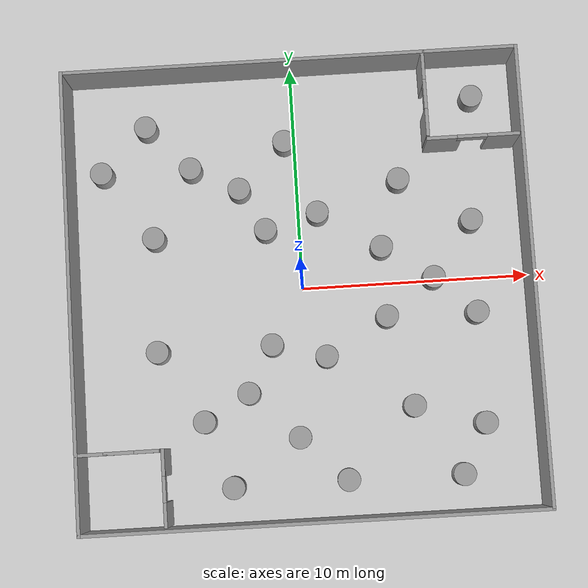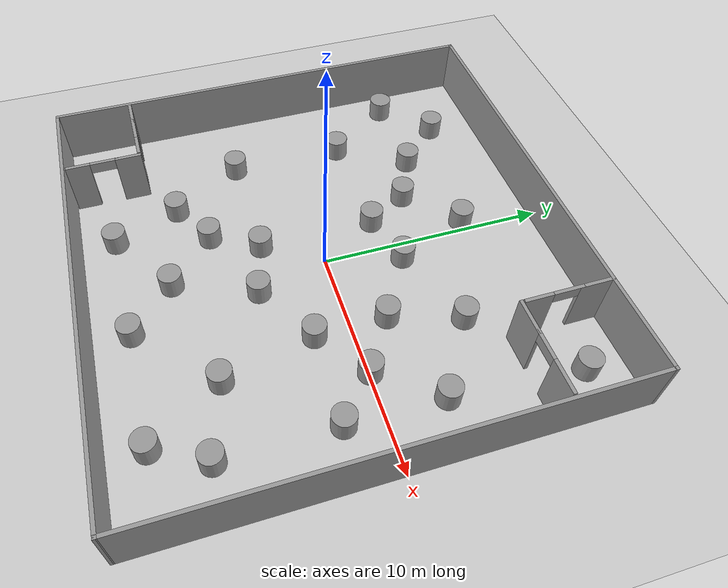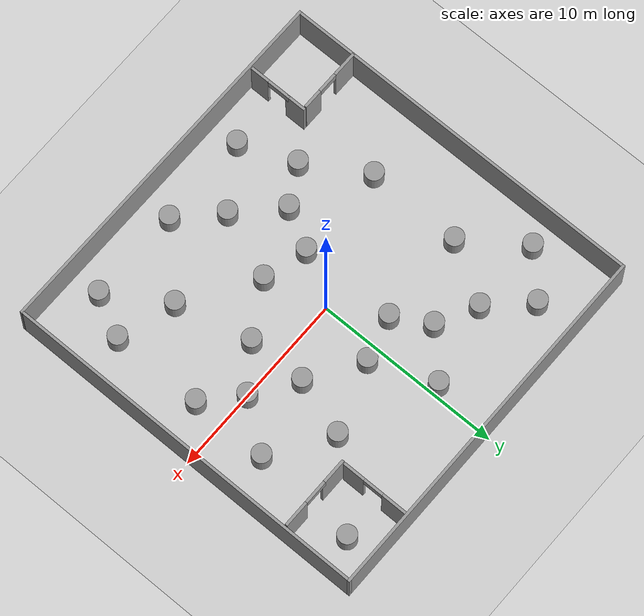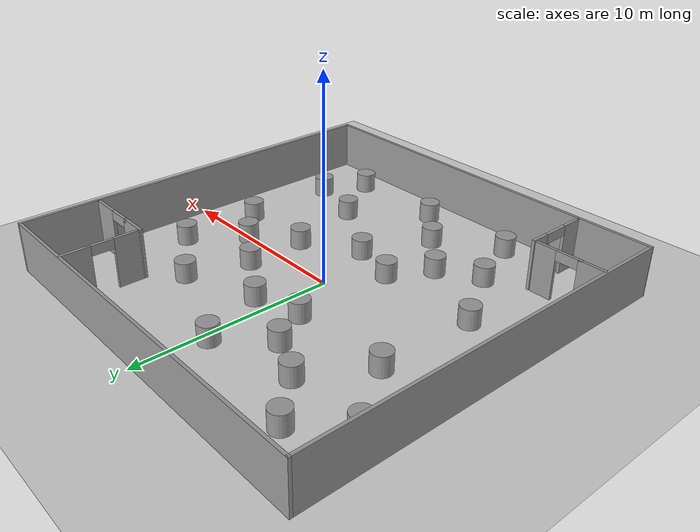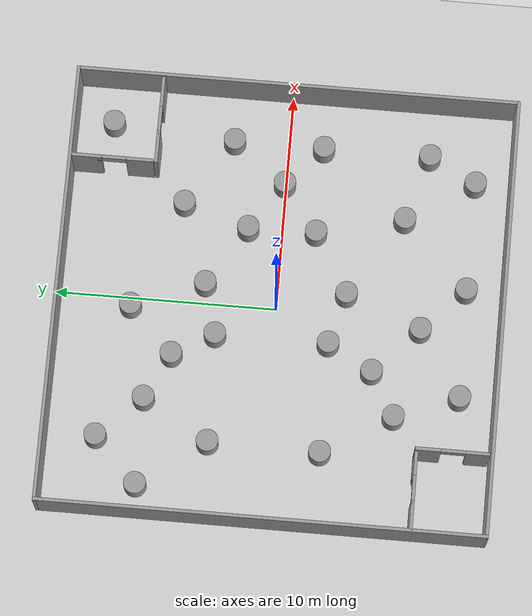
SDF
<sdf version="1.7">
 <world name="default">
  <light name="sun" type="directional">
   <pose>0 0 10 0 -0 0</pose>
   <diffuse>0.8 0.8 0.8 1</diffuse>
   <specular>0.2 0.2 0.2 1</specular>
   <attenuation>
    <range>1000</range>
    <constant>0.9</constant>
    <linear>0.01</linear>
    <quadratic>0.001</quadratic>
   </attenuation>
   <direction>-0.5 0.1 -0.9</direction>
   <spot><inner_angle>0</inner_angle><outer_angle>0</outer_angle><falloff>0</falloff></spot>
  </light>
  <model name="ground_plane">
   <static>1</static>
   <link name="link">
    <collision name="collision">
     <geometry><plane><normal>0 0 1</normal><size>100 100</size></plane></geometry>
     <surface>
      <contact><collide_bitmask>65535</collide_bitmask></contact>
      <friction><ode><mu>100</mu><mu2>50</mu2></ode></friction>
     </surface>
    </collision>
    <visual name="visual">
     <cast_shadows>0</cast_shadows>
     <geometry><plane><normal>0 0 1</normal><size>100 100</size></plane></geometry>
     <material>
      <script><uri>file://media/materials/scripts/gazebo.material</uri><name>Gazebo/Grey</name></script>
     </material>
    </visual>
   </link>
  </model>
  <gravity>0 0 -9.8</gravity>
  <magnetic_field>6e-06 2.3e-05 -4.2e-05</magnetic_field>
  <atmosphere type="adiabatic"/>
  <physics type="ode">
   <max_step_size>0.01</max_step_size>
   <real_time_factor>1</real_time_factor>
   <real_time_update_rate>1000</real_time_update_rate>
  </physics>
  <scene><ambient>0.4 0.4 0.4 1</ambient><background>0.7 0.7 0.7 1</background><shadows>1</shadows></scene>
  <spherical_coordinates>
   <surface_model>EARTH_WGS84</surface_model>
   <latitude_deg>0</latitude_deg>
   <longitude_deg>0</longitude_deg>
   <elevation>0</elevation>
   <heading_deg>0</heading_deg>
  </spherical_coordinates>
  <plugin name="clock_control" filename="libclock_plugin.so"/>
  <model name="p2pcontour2">
   <pose>-0.01647 -0.193071 0 0 -0 0</pose>
   <link name="Wall_12">
    <collision name="Wall_12_Collision">
     <geometry><box><size>20 0.15 2.5</size></box></geometry>
     <pose>0 0 1.25 0 -0 0</pose>
    </collision>
    <visual name="Wall_12_Visual">
     <pose>0 0 1.25 0 -0 0</pose>
     <geometry><box><size>20 0.15 2.5</size></box></geometry>
     <material>
      <script><uri>file://media/materials/scripts/gazebo.material</uri><name>Gazebo/Grey</name></script>
      <ambient>1 1 1 1</ambient>
     </material>
     <meta><layer>0</layer></meta>
    </visual>
    <pose>-9.92997 0.046698 0 0 -0 -1.5708</pose>
   </link>
   <link name="Wall_13">
    <collision name="Wall_13_Collision">
     <geometry><box><size>20 0.15 2.5</size></box></geometry>
     <pose>0 0 1.25 0 -0 0</pose>
    </collision>
    <visual name="Wall_13_Visual">
     <pose>0 0 1.25 0 -0 0</pose>
     <geometry><box><size>20 0.15 2.5</size></box></geometry>
     <material>
      <script><uri>file://media/materials/scripts/gazebo.material</uri><name>Gazebo/Grey</name></script>
      <ambient>1 1 1 1</ambient>
     </material>
     <meta><layer>0</layer></meta>
    </visual>
    <pose>-0.004967 -9.92483 0 0 -0 -0.004688</pose>
   </link>
   <link name="Wall_16">
    <pose>-8.08106 -6.54208 0 0 -0 0</pose>
    <visual name="Wall_16_Visual_0">
     <pose>-1.18545 0 1.25 0 -0 0</pose>
     <geometry><box><size>1.37909 0.15 2.5</size></box></geometry>
     <material>
      <script><uri>file://media/materials/scripts/gazebo.material</uri><name>Gazebo/Grey</name></script>
      <ambient>1 1 1 1</ambient>
     </material>
     <meta><layer>0</layer></meta>
    </visual>
    <collision name="Wall_16_Collision_0">
     <geometry><box><size>1.37909 0.15 2.5</size></box></geometry>
     <pose>-1.18545 0 1.25 0 -0 0</pose>
    </collision>
    <visual name="Wall_16_Visual_1">
     <pose>1.13955 0 1.25 0 -0 0</pose>
     <geometry><box><size>1.07091 0.15 2.5</size></box></geometry>
     <material>
      <script><uri>file://media/materials/scripts/gazebo.material</uri><name>Gazebo/Grey</name></script>
      <ambient>1 1 1 1</ambient>
     </material>
     <meta><layer>0</layer></meta>
    </visual>
    <collision name="Wall_16_Collision_1">
     <geometry><box><size>1.07091 0.15 2.5</size></box></geometry>
     <pose>1.13955 0 1.25 0 -0 0</pose>
    </collision>
    <visual name="Wall_16_Visual_2">
     <pose>-0.045907 0 2.25 0 -0 0</pose>
     <geometry><box><size>1.3 0.15 0.5</size></box></geometry>
     <material>
      <script><uri>file://media/materials/scripts/gazebo.material</uri><name>Gazebo/Grey</name></script>
      <ambient>1 1 1 1</ambient>
     </material>
     <meta><layer>0</layer></meta>
    </visual>
    <collision name="Wall_16_Collision_2">
     <geometry><box><size>1.3 0.15 0.5</size></box></geometry>
     <pose>-0.045907 0 2.25 0 -0 0</pose>
    </collision>
   </link>
   <link name="Wall_17">
    <pose>-6.28106 -8.21708 0 0 -0 -1.5708</pose>
    <visual name="Wall_17_Visual_0">
     <pose>-1.17716 0 1.25 0 -0 0</pose>
     <geometry><box><size>1.14568 0.15 2.5</size></box></geometry>
     <material>
      <script><uri>file://media/materials/scripts/gazebo.material</uri><name>Gazebo/Grey</name></script>
      <ambient>1 1 1 1</ambient>
     </material>
     <meta><layer>0</layer></meta>
    </visual>
    <collision name="Wall_17_Collision_0">
     <geometry><box><size>1.14568 0.15 2.5</size></box></geometry>
     <pose>-1.17716 0 1.25 0 -0 0</pose>
    </collision>
    <visual name="Wall_17_Visual_1">
     <pose>1.02284 0 1.25 0 -0 0</pose>
     <geometry><box><size>1.05432 0.15 2.5</size></box></geometry>
     <material>
      <script><uri>file://media/materials/scripts/gazebo.material</uri><name>Gazebo/Grey</name></script>
      <ambient>1 1 1 1</ambient>
     </material>
     <meta><layer>0</layer></meta>
    </visual>
    <collision name="Wall_17_Collision_1">
     <geometry><box><size>1.05432 0.15 2.5</size></box></geometry>
     <pose>1.02284 0 1.25 0 -0 0</pose>
    </collision>
    <visual name="Wall_17_Visual_2">
     <pose>-0.154321 0 2.25 0 -0 0</pose>
     <geometry><box><size>1.3 0.15 0.5</size></box></geometry>
     <material>
      <script><uri>file://media/materials/scripts/gazebo.material</uri><name>Gazebo/Grey</name></script>
      <ambient>1 1 1 1</ambient>
     </material>
     <meta><layer>0</layer></meta>
    </visual>
    <collision name="Wall_17_Collision_2">
     <geometry><box><size>1.3 0.15 0.5</size></box></geometry>
     <pose>-0.154321 0 2.25 0 -0 0</pose>
    </collision>
   </link>
   <link name="Wall_21">
    <pose>5.83021 8.01699 0 0 -0 -1.5708</pose>
    <visual name="Wall_21_Visual_0">
     <pose>-1.25702 0 1.25 0 -0 0</pose>
     <geometry><box><size>1.48596 0.15 2.5</size></box></geometry>
     <material>
      <script><uri>file://media/materials/scripts/gazebo.material</uri><name>Gazebo/Grey</name></script>
      <ambient>1 1 1 1</ambient>
     </material>
     <meta><layer>0</layer></meta>
    </visual>
    <collision name="Wall_21_Collision_0">
     <geometry><box><size>1.48596 0.15 2.5</size></box></geometry>
     <pose>-1.25702 0 1.25 0 -0 0</pose>
    </collision>
    <visual name="Wall_21_Visual_1">
     <pose>1.19298 0 1.25 0 -0 0</pose>
     <geometry><box><size>1.21404 0.15 2.5</size></box></geometry>
     <material>
      <script><uri>file://media/materials/scripts/gazebo.material</uri><name>Gazebo/Grey</name></script>
      <ambient>1 1 1 1</ambient>
     </material>
     <meta><layer>0</layer></meta>
    </visual>
    <collision name="Wall_21_Collision_1">
     <geometry><box><size>1.21404 0.15 2.5</size></box></geometry>
     <pose>1.19298 0 1.25 0 -0 0</pose>
    </collision>
    <visual name="Wall_21_Visual_2">
     <pose>-0.064044 0 2.25 0 -0 0</pose>
     <geometry><box><size>1.3 0.15 0.5</size></box></geometry>
     <material>
      <script><uri>file://media/materials/scripts/gazebo.material</uri><name>Gazebo/Grey</name></script>
      <ambient>1 1 1 1</ambient>
     </material>
     <meta><layer>0</layer></meta>
    </visual>
    <collision name="Wall_21_Collision_2">
     <geometry><box><size>1.3 0.15 0.5</size></box></geometry>
     <pose>-0.064044 0 2.25 0 -0 0</pose>
    </collision>
   </link>
   <link name="Wall_24">
    <pose>7.88021 6.09199 0 0 -0 0</pose>
    <visual name="Wall_24_Visual_0">
     <pose>-1.35876 0 1.25 0 -0 0</pose>
     <geometry><box><size>1.53248 0.15 2.5</size></box></geometry>
     <material>
      <script><uri>file://media/materials/scripts/gazebo.material</uri><name>Gazebo/Grey</name></script>
      <ambient>1 1 1 1</ambient>
     </material>
     <meta><layer>0</layer></meta>
    </visual>
    <collision name="Wall_24_Collision_0">
     <geometry><box><size>1.53248 0.15 2.5</size></box></geometry>
     <pose>-1.35876 0 1.25 0 -0 0</pose>
    </collision>
    <visual name="Wall_24_Visual_1">
     <pose>1.21624 0 1.25 0 -0 0</pose>
     <geometry><box><size>1.41752 0.15 2.5</size></box></geometry>
     <material>
      <script><uri>file://media/materials/scripts/gazebo.material</uri><name>Gazebo/Grey</name></script>
      <ambient>1 1 1 1</ambient>
     </material>
     <meta><layer>0</layer></meta>
    </visual>
    <collision name="Wall_24_Collision_1">
     <geometry><box><size>1.41752 0.15 2.5</size></box></geometry>
     <pose>1.21624 0 1.25 0 -0 0</pose>
    </collision>
    <visual name="Wall_24_Visual_2">
     <pose>-0.142519 0 2.25 0 -0 0</pose>
     <geometry><box><size>1.3 0.15 0.5</size></box></geometry>
     <material>
      <script><uri>file://media/materials/scripts/gazebo.material</uri><name>Gazebo/Grey</name></script>
      <ambient>1 1 1 1</ambient>
     </material>
     <meta><layer>0</layer></meta>
    </visual>
    <collision name="Wall_24_Collision_2">
     <geometry><box><size>1.3 0.15 0.5</size></box></geometry>
     <pose>-0.142519 0 2.25 0 -0 0</pose>
    </collision>
   </link>
   <link name="Wall_7">
    <collision name="Wall_7_Collision">
     <geometry><box><size>20.093 0.15 2.5</size></box></geometry>
     <pose>0 0 1.25 0 -0 0</pose>
    </collision>
    <visual name="Wall_7_Visual">
     <pose>0 0 1.25 0 -0 0</pose>
     <geometry><box><size>20.093 0.15 2.5</size></box></geometry>
     <material>
      <script><uri>file://media/materials/scripts/gazebo.material</uri><name>Gazebo/Grey</name></script>
      <ambient>1 1 1 1</ambient>
     </material>
     <meta><layer>0</layer></meta>
    </visual>
    <pose>9.92003 0.000175 0 0 -0 1.5708</pose>
   </link>
   <link name="Wall_8">
    <collision name="Wall_8_Collision">
     <geometry><box><size>20 0.15 2.5</size></box></geometry>
     <pose>0 0 1.25 0 -0 0</pose>
    </collision>
    <visual name="Wall_8_Visual">
     <pose>0 0 1.25 0 -0 0</pose>
     <geometry><box><size>20 0.15 2.5</size></box></geometry>
     <material>
      <script><uri>file://media/materials/scripts/gazebo.material</uri><name>Gazebo/Grey</name></script>
      <ambient>1 1 1 1</ambient>
     </material>
     <meta><layer>0</layer></meta>
    </visual>
    <pose>-0.004967 9.9717 0 0 -0 3.14159</pose>
   </link>
   <static>1</static>
  </model>
  <model name="unit_cylinder">
   <pose>0.83328 3.25046 0.499096 4.8e-05 4.8e-05 -3e-05</pose>
   <link name="link">
    <inertial>
     <mass>1</mass>
     <inertia><ixx>0.145833</ixx><ixy>0</ixy><ixz>0</ixz><iyy>0.145833</iyy><iyz>0</iyz><izz>0.125</izz></inertia>
    </inertial>
    <collision name="collision">
     <geometry><cylinder><radius>0.5</radius><length>1</length></cylinder></geometry>
    </collision>
    <visual name="visual">
     <geometry><cylinder><radius>0.5</radius><length>1</length></cylinder></geometry>
     <material>
      <script><name>Gazebo/Grey</name><uri>file://media/materials/scripts/gazebo.material</uri></script>
     </material>
    </visual>
   </link>
  </model>
  <model name="unit_cylinder_0">
   <pose>0.866452 -3.12053 0.49912 0 0 -2.9e-05</pose>
   <link name="link">
    <inertial>
     <mass>1</mass>
     <inertia><ixx>0.145833</ixx><ixy>0</ixy><ixz>0</ixz><iyy>0.145833</iyy><iyz>0</iyz><izz>0.125</izz></inertia>
    </inertial>
    <collision name="collision">
     <geometry><cylinder><radius>0.5</radius><length>1</length></cylinder></geometry>
    </collision>
    <visual name="visual">
     <geometry><cylinder><radius>0.5</radius><length>1</length></cylinder></geometry>
     <material>
      <script><name>Gazebo/Grey</name><uri>file://media/materials/scripts/gazebo.material</uri></script>
     </material>
    </visual>
   </link>
  </model>
  <model name="unit_cylinder_1">
   <pose>-2.55519 4.49272 0.499789 0.000422 0.000422 -2.9e-05</pose>
   <link name="link">
    <inertial>
     <mass>1</mass>
     <inertia><ixx>0.145833</ixx><ixy>0</ixy><ixz>0</ixz><iyy>0.145833</iyy><iyz>0</iyz><izz>0.125</izz></inertia>
    </inertial>
    <collision name="collision">
     <geometry><cylinder><radius>0.5</radius><length>1</length></cylinder></geometry>
    </collision>
    <visual name="visual">
     <geometry><cylinder><radius>0.5</radius><length>1</length></cylinder></geometry>
     <material>
      <script><name>Gazebo/Grey</name><uri>file://media/materials/scripts/gazebo.material</uri></script>
     </material>
    </visual>
   </link>
  </model>
  <model name="unit_cylinder_2">
   <pose>-2.60903 -4.51805 0.499824 -0.000249 -0.000249 -2.8e-05</pose>
   <link name="link">
    <inertial>
     <mass>1</mass>
     <inertia><ixx>0.145833</ixx><ixy>0</ixy><ixz>0</ixz><iyy>0.145833</iyy><iyz>0</iyz><izz>0.125</izz></inertia>
    </inertial>
    <collision name="collision">
     <geometry><cylinder><radius>0.5</radius><length>1</length></cylinder></geometry>
    </collision>
    <visual name="visual">
     <geometry><cylinder><radius>0.5</radius><length>1</length></cylinder></geometry>
     <material>
      <script><name>Gazebo/Grey</name><uri>file://media/materials/scripts/gazebo.material</uri></script>
     </material>
    </visual>
   </link>
  </model>
  <model name="unit_cylinder_3">
   <pose>-6.41529 2.52337 0.499096 4.8e-05 4.8e-05 -2.7e-05</pose>
   <link name="link">
    <inertial>
     <mass>1</mass>
     <inertia><ixx>0.145833</ixx><ixy>0</ixy><ixz>0</ixz><iyy>0.145833</iyy><iyz>0</iyz><izz>0.125</izz></inertia>
    </inertial>
    <collision name="collision">
     <geometry><cylinder><radius>0.5</radius><length>1</length></cylinder></geometry>
    </collision>
    <visual name="visual">
     <geometry><cylinder><radius>0.5</radius><length>1</length></cylinder></geometry>
     <material>
      <script><name>Gazebo/Grey</name><uri>file://media/materials/scripts/gazebo.material</uri></script>
     </material>
    </visual>
   </link>
  </model>
  <model name="unit_cylinder_4">
   <pose>-6.48458 -2.49862 0.49912 0 0 -2.6e-05</pose>
   <link name="link">
    <inertial>
     <mass>1</mass>
     <inertia><ixx>0.145833</ixx><ixy>0</ixy><ixz>0</ixz><iyy>0.145833</iyy><iyz>0</iyz><izz>0.125</izz></inertia>
    </inertial>
    <collision name="collision">
     <geometry><cylinder><radius>0.5</radius><length>1</length></cylinder></geometry>
    </collision>
    <visual name="visual">
     <geometry><cylinder><radius>0.5</radius><length>1</length></cylinder></geometry>
     <material>
      <script><name>Gazebo/Grey</name><uri>file://media/materials/scripts/gazebo.material</uri></script>
     </material>
    </visual>
   </link>
  </model>
  <model name="unit_cylinder_5">
   <pose>3.60553 -1.52404 0.499789 0.000422 0.000422 -2.5e-05</pose>
   <link name="link">
    <inertial>
     <mass>1</mass>
     <inertia><ixx>0.145833</ixx><ixy>0</ixy><ixz>0</ixz><iyy>0.145833</iyy><iyz>0</iyz><izz>0.125</izz></inertia>
    </inertial>
    <collision name="collision">
     <geometry><cylinder><radius>0.5</radius><length>1</length></cylinder></geometry>
    </collision>
    <visual name="visual">
     <geometry><cylinder><radius>0.5</radius><length>1</length></cylinder></geometry>
     <material>
      <script><name>Gazebo/Grey</name><uri>file://media/materials/scripts/gazebo.material</uri></script>
     </material>
    </visual>
   </link>
  </model>
  <model name="unit_cylinder_6">
   <pose>3.55777 1.54505 0.499824 -0.000249 -0.000249 -2.4e-05</pose>
   <link name="link">
    <inertial>
     <mass>1</mass>
     <inertia><ixx>0.145833</ixx><ixy>0</ixy><ixz>0</ixz><iyy>0.145833</iyy><iyz>0</iyz><izz>0.125</izz></inertia>
    </inertial>
    <collision name="collision">
     <geometry><cylinder><radius>0.5</radius><length>1</length></cylinder></geometry>
    </collision>
    <visual name="visual">
     <geometry><cylinder><radius>0.5</radius><length>1</length></cylinder></geometry>
     <material>
      <script><name>Gazebo/Grey</name><uri>file://media/materials/scripts/gazebo.material</uri></script>
     </material>
    </visual>
   </link>
  </model>
  <model name="unit_cylinder_7">
   <pose>5.76583 0.067579 0.499096 4.8e-05 4.8e-05 -2.3e-05</pose>
   <link name="link">
    <inertial>
     <mass>1</mass>
     <inertia><ixx>0.145833</ixx><ixy>0</ixy><ixz>0</ixz><iyy>0.145833</iyy><iyz>0</iyz><izz>0.125</izz></inertia>
    </inertial>
    <collision name="collision">
     <geometry><cylinder><radius>0.5</radius><length>1</length></cylinder></geometry>
    </collision>
    <visual name="visual">
     <geometry><cylinder><radius>0.5</radius><length>1</length></cylinder></geometry>
     <material>
      <script><name>Gazebo/Grey</name><uri>file://media/materials/scripts/gazebo.material</uri></script>
     </material>
    </visual>
   </link>
  </model>
  <model name="unit_cylinder_8">
   <pose>4.53958 -5.48686 0.49912 0 0 -2.2e-05</pose>
   <link name="link">
    <inertial>
     <mass>1</mass>
     <inertia><ixx>0.145833</ixx><ixy>0</ixy><ixz>0</ixz><iyy>0.145833</iyy><iyz>0</iyz><izz>0.125</izz></inertia>
    </inertial>
    <collision name="collision">
     <geometry><cylinder><radius>0.5</radius><length>1</length></cylinder></geometry>
    </collision>
    <visual name="visual">
     <geometry><cylinder><radius>0.5</radius><length>1</length></cylinder></geometry>
     <material>
      <script><name>Gazebo/Grey</name><uri>file://media/materials/scripts/gazebo.material</uri></script>
     </material>
    </visual>
   </link>
  </model>
  <model name="unit_cylinder_9">
   <pose>4.4948 4.52253 0.499789 0.000422 0.000422 -2.1e-05</pose>
   <link name="link">
    <inertial>
     <mass>1</mass>
     <inertia><ixx>0.145833</ixx><ixy>0</ixy><ixz>0</ixz><iyy>0.145833</iyy><iyz>0</iyz><izz>0.125</izz></inertia>
    </inertial>
    <collision name="collision">
     <geometry><cylinder><radius>0.5</radius><length>1</length></cylinder></geometry>
    </collision>
    <visual name="visual">
     <geometry><cylinder><radius>0.5</radius><length>1</length></cylinder></geometry>
     <material>
      <script><name>Gazebo/Grey</name><uri>file://media/materials/scripts/gazebo.material</uri></script>
     </material>
    </visual>
   </link>
  </model>
  <model name="unit_cylinder_10">
   <pose>-0.500764 -6.55416 0.499824 -0.000249 -0.000249 -2e-05</pose>
   <link name="link">
    <inertial>
     <mass>1</mass>
     <inertia><ixx>0.145833</ixx><ixy>0</ixy><ixz>0</ixz><iyy>0.145833</iyy><iyz>0</iyz><izz>0.125</izz></inertia>
    </inertial>
    <collision name="collision">
     <geometry><cylinder><radius>0.5</radius><length>1</length></cylinder></geometry>
    </collision>
    <visual name="visual">
     <geometry><cylinder><radius>0.5</radius><length>1</length></cylinder></geometry>
     <material>
      <script><name>Gazebo/Grey</name><uri>file://media/materials/scripts/gazebo.material</uri></script>
     </material>
    </visual>
   </link>
  </model>
  <model name="unit_cylinder_11">
   <pose>-0.454223 6.52018 0.499096 4.8e-05 4.8e-05 -1.9e-05</pose>
   <link name="link">
    <inertial>
     <mass>1</mass>
     <inertia><ixx>0.145833</ixx><ixy>0</ixy><ixz>0</ixz><iyy>0.145833</iyy><iyz>0</iyz><izz>0.125</izz></inertia>
    </inertial>
    <collision name="collision">
     <geometry><cylinder><radius>0.5</radius><length>1</length></cylinder></geometry>
    </collision>
    <visual name="visual">
     <geometry><cylinder><radius>0.5</radius><length>1</length></cylinder></geometry>
     <material>
      <script><name>Gazebo/Grey</name><uri>file://media/materials/scripts/gazebo.material</uri></script>
     </material>
    </visual>
   </link>
  </model>
  <model name="unit_cylinder_12">
   <pose>-4.59326 -5.63955 0.49912 0 0 -1.8e-05</pose>
   <link name="link">
    <inertial>
     <mass>1</mass>
     <inertia><ixx>0.145833</ixx><ixy>0</ixy><ixz>0</ixz><iyy>0.145833</iyy><iyz>0</iyz><izz>0.125</izz></inertia>
    </inertial>
    <collision name="collision">
     <geometry><cylinder><radius>0.5</radius><length>1</length></cylinder></geometry>
    </collision>
    <visual name="visual">
     <geometry><cylinder><radius>0.5</radius><length>1</length></cylinder></geometry>
     <material>
      <script><name>Gazebo/Grey</name><uri>file://media/materials/scripts/gazebo.material</uri></script>
     </material>
    </visual>
   </link>
  </model>
  <model name="unit_cylinder_13">
   <pose>-4.65553 5.53963 0.499789 0.000422 0.000422 -1.8e-05</pose>
   <link name="link">
    <inertial>
     <mass>1</mass>
     <inertia><ixx>0.145833</ixx><ixy>0</ixy><ixz>0</ixz><iyy>0.145833</iyy><iyz>0</iyz><izz>0.125</izz></inertia>
    </inertial>
    <collision name="collision">
     <geometry><cylinder><radius>0.5</radius><length>1</length></cylinder></geometry>
    </collision>
    <visual name="visual">
     <geometry><cylinder><radius>0.5</radius><length>1</length></cylinder></geometry>
     <material>
      <script><name>Gazebo/Grey</name><uri>file://media/materials/scripts/gazebo.material</uri></script>
     </material>
    </visual>
   </link>
  </model>
  <model name="unit_cylinder_14">
   <pose>-1.48227 -2.48036 0.499824 -0.000249 -0.000249 -1.7e-05</pose>
   <link name="link">
    <inertial>
     <mass>1</mass>
     <inertia><ixx>0.145833</ixx><ixy>0</ixy><ixz>0</ixz><iyy>0.145833</iyy><iyz>0</iyz><izz>0.125</izz></inertia>
    </inertial>
    <collision name="collision">
     <geometry><cylinder><radius>0.5</radius><length>1</length></cylinder></geometry>
    </collision>
    <visual name="visual">
     <geometry><cylinder><radius>0.5</radius><length>1</length></cylinder></geometry>
     <material>
      <script><name>Gazebo/Grey</name><uri>file://media/materials/scripts/gazebo.material</uri></script>
     </material>
    </visual>
   </link>
  </model>
  <model name="unit_cylinder_15">
   <pose>-1.49116 2.61751 0.499096 4.8e-05 4.8e-05 -1.6e-05</pose>
   <link name="link">
    <inertial>
     <mass>1</mass>
     <inertia><ixx>0.145833</ixx><ixy>0</ixy><ixz>0</ixz><iyy>0.145833</iyy><iyz>0</iyz><izz>0.125</izz></inertia>
    </inertial>
    <collision name="collision">
     <geometry><cylinder><radius>0.5</radius><length>1</length></cylinder></geometry>
    </collision>
    <visual name="visual">
     <geometry><cylinder><radius>0.5</radius><length>1</length></cylinder></geometry>
     <material>
      <script><name>Gazebo/Grey</name><uri>file://media/materials/scripts/gazebo.material</uri></script>
     </material>
    </visual>
   </link>
  </model>
  <model name="unit_cylinder_16">
   <pose>7.58377 -6.40919 0.499789 0.000422 0.000422 -1.4e-05</pose>
   <link name="link">
    <inertial>
     <mass>1</mass>
     <inertia><ixx>0.145833</ixx><ixy>0</ixy><ixz>0</ixz><iyy>0.145833</iyy><iyz>0</iyz><izz>0.125</izz></inertia>
    </inertial>
    <collision name="collision">
     <geometry><cylinder><radius>0.5</radius><length>1</length></cylinder></geometry>
    </collision>
    <visual name="visual">
     <geometry><cylinder><radius>0.5</radius><length>1</length></cylinder></geometry>
     <material>
      <script><name>Gazebo/Grey</name><uri>file://media/materials/scripts/gazebo.material</uri></script>
     </material>
    </visual>
   </link>
  </model>
  <model name="unit_cylinder_17">
   <pose>6.47446 -8.5506 0.499824 -0.000249 -0.000249 -1.3e-05</pose>
   <link name="link">
    <inertial>
     <mass>1</mass>
     <inertia><ixx>0.145833</ixx><ixy>0</ixy><ixz>0</ixz><iyy>0.145833</iyy><iyz>0</iyz><izz>0.125</izz></inertia>
    </inertial>
    <collision name="collision">
     <geometry><cylinder><radius>0.5</radius><length>1</length></cylinder></geometry>
    </collision>
    <visual name="visual">
     <geometry><cylinder><radius>0.5</radius><length>1</length></cylinder></geometry>
     <material>
      <script><name>Gazebo/Grey</name><uri>file://media/materials/scripts/gazebo.material</uri></script>
     </material>
    </visual>
   </link>
  </model>
  <model name="unit_cylinder_18">
   <pose>-6.54648 7.5185 0.499096 4.8e-05 4.8e-05 -1.2e-05</pose>
   <link name="link">
    <inertial>
     <mass>1</mass>
     <inertia><ixx>0.145833</ixx><ixy>0</ixy><ixz>0</ixz><iyy>0.145833</iyy><iyz>0</iyz><izz>0.125</izz></inertia>
    </inertial>
    <collision name="collision">
     <geometry><cylinder><radius>0.5</radius><length>1</length></cylinder></geometry>
    </collision>
    <visual name="visual">
     <geometry><cylinder><radius>0.5</radius><length>1</length></cylinder></geometry>
     <material>
      <script><name>Gazebo/Grey</name><uri>file://media/materials/scripts/gazebo.material</uri></script>
     </material>
    </visual>
   </link>
  </model>
  <model name="unit_cylinder_19">
   <pose>-8.58507 5.55093 0.49912 0 0 -1.1e-05</pose>
   <link name="link">
    <inertial>
     <mass>1</mass>
     <inertia><ixx>0.145833</ixx><ixy>0</ixy><ixz>0</ixz><iyy>0.145833</iyy><iyz>0</iyz><izz>0.125</izz></inertia>
    </inertial>
    <collision name="collision">
     <geometry><cylinder><radius>0.5</radius><length>1</length></cylinder></geometry>
    </collision>
    <visual name="visual">
     <geometry><cylinder><radius>0.5</radius><length>1</length></cylinder></geometry>
     <material>
      <script><name>Gazebo/Grey</name><uri>file://media/materials/scripts/gazebo.material</uri></script>
     </material>
    </visual>
   </link>
  </model>
  <model name="unit_cylinder_20">
   <pose>7.99044 8.05049 0.499789 0.000422 0.000422 -1e-05</pose>
   <link name="link">
    <inertial>
     <mass>1</mass>
     <inertia><ixx>0.145833</ixx><ixy>0</ixy><ixz>0</ixz><iyy>0.145833</iyy><iyz>0</iyz><izz>0.125</izz></inertia>
    </inertial>
    <collision name="collision">
     <geometry><cylinder><radius>0.5</radius><length>1</length></cylinder></geometry>
    </collision>
    <visual name="visual">
     <geometry><cylinder><radius>0.5</radius><length>1</length></cylinder></geometry>
     <material>
      <script><name>Gazebo/Grey</name><uri>file://media/materials/scripts/gazebo.material</uri></script>
     </material>
    </visual>
   </link>
  </model>
  <model name="unit_cylinder_21">
   <pose>-3.4804 -8.52191 0.499789 0.000422 0.000422 -7e-06</pose>
   <link name="link">
    <inertial>
     <mass>1</mass>
     <inertia><ixx>0.145833</ixx><ixy>0</ixy><ixz>0</ixz><iyy>0.145833</iyy><iyz>0</iyz><izz>0.125</izz></inertia>
    </inertial>
    <collision name="collision">
     <geometry><cylinder><radius>0.5</radius><length>1</length></cylinder></geometry>
    </collision>
    <visual name="visual">
     <geometry><cylinder><radius>0.5</radius><length>1</length></cylinder></geometry>
     <material>
      <script><name>Gazebo/Grey</name><uri>file://media/materials/scripts/gazebo.material</uri></script>
     </material>
    </visual>
   </link>
  </model>
  <model name="unit_cylinder_22">
   <pose>1.48702 -8.48389 0.499824 -0.000249 -0.000249 -6e-06</pose>
   <link name="link">
    <inertial>
     <mass>1</mass>
     <inertia><ixx>0.145833</ixx><ixy>0</ixy><ixz>0</ixz><iyy>0.145833</iyy><iyz>0</iyz><izz>0.125</izz></inertia>
    </inertial>
    <collision name="collision">
     <geometry><cylinder><radius>0.5</radius><length>1</length></cylinder></geometry>
    </collision>
    <visual name="visual">
     <geometry><cylinder><radius>0.5</radius><length>1</length></cylinder></geometry>
     <material>
      <script><name>Gazebo/Grey</name><uri>file://media/materials/scripts/gazebo.material</uri></script>
     </material>
    </visual>
   </link>
  </model>
  <model name="unit_cylinder_23">
   <pose>7.5644 -1.57163 0.499096 4.8e-05 4.8e-05 -5e-06</pose>
   <link name="link">
    <inertial>
     <mass>1</mass>
     <inertia><ixx>0.145833</ixx><ixy>0</ixy><ixz>0</ixz><iyy>0.145833</iyy><iyz>0</iyz><izz>0.125</izz></inertia>
    </inertial>
    <collision name="collision">
     <geometry><cylinder><radius>0.5</radius><length>1</length></cylinder></geometry>
    </collision>
    <visual name="visual">
     <geometry><cylinder><radius>0.5</radius><length>1</length></cylinder></geometry>
     <material>
      <script><name>Gazebo/Grey</name><uri>file://media/materials/scripts/gazebo.material</uri></script>
     </material>
    </visual>
   </link>
  </model>
  <model name="unit_cylinder_24">
   <pose>7.59607 2.50619 0.49912 0 0 -4e-06</pose>
   <link name="link">
    <inertial>
     <mass>1</mass>
     <inertia><ixx>0.145833</ixx><ixy>0</ixy><ixz>0</ixz><iyy>0.145833</iyy><iyz>0</iyz><izz>0.125</izz></inertia>
    </inertial>
    <collision name="collision">
     <geometry><cylinder><radius>0.5</radius><length>1</length></cylinder></geometry>
    </collision>
    <visual name="visual">
     <geometry><cylinder><radius>0.5</radius><length>1</length></cylinder></geometry>
     <material>
      <script><name>Gazebo/Grey</name><uri>file://media/materials/scripts/gazebo.material</uri></script>
     </material>
    </visual>
   </link>
  </model>
 </world>
</sdf>
